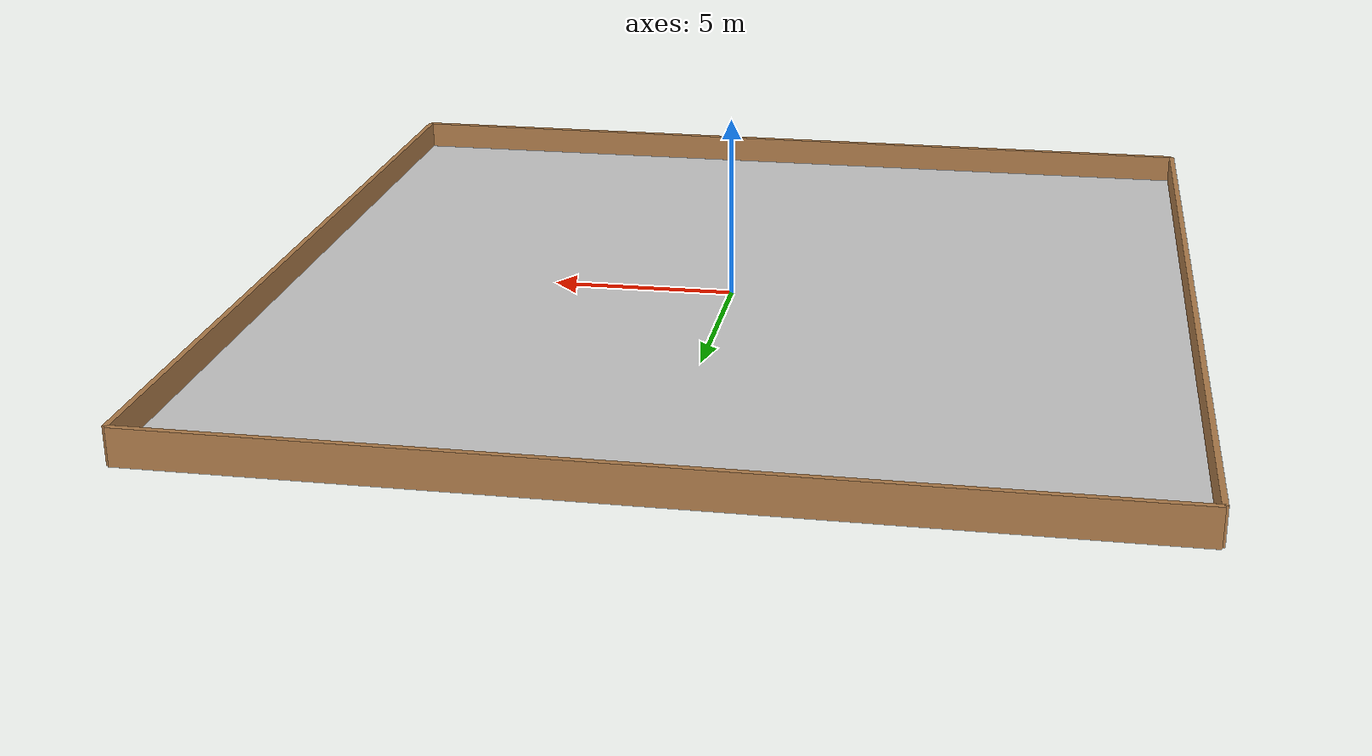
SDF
<sdf version='1.6'>
  <world name='default'>
    <include>
      <uri>model://sun</uri>
    </include>
    <include>
      <uri>model://grounds</uri>
    </include>
    <include>
      <uri>model://enclosure</uri>
    </include>
    <physics type="ode">
        <real_time_update_rate>200</real_time_update_rate>
        <real_time_factor>1</real_time_factor>
        <max_step_size>0.005</max_step_size>
    </physics>
    <gravity>0 0 -9.8</gravity>
  </world>
</sdf>

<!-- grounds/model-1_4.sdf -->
<sdf version="1.4">
<model name="grounds">
  <static>true</static>
    <link name="dirt">
      <collision name="collision">
        <geometry>
          <plane>
            <normal>0 0 1</normal>
            <size>25 25</size>
          </plane>
        </geometry>
        <surface>
          <friction>
            <ode>
              <mu>Inf</mu>
              <mu2>Inf</mu2>
            </ode>
          </friction>
        </surface>
      </collision>
      <visual name="visual">
        <cast_shadows>false</cast_shadows>
        <geometry>
          <plane>
            <normal>0 0 1</normal>
            <size>25 25</size>
          </plane>
        </geometry>
        <material>
          <script>
            <uri>model://grounds/materials/scripts</uri>
            <uri>model://grounds/materials/textures</uri>
            <name>grounds/terrain</name>
          </script>
        </material>
      </visual>
    </link>
  </model>
</sdf>

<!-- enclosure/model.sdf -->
<sdf version='1.6'>
  <model name='enclosure'>
    <link name='Wall_0'>
      <pose frame=''>0 12.5 0 0 -0 0</pose>
      <self_collide>0</self_collide>
      <enable_wind>0</enable_wind>
      <kinematic>0</kinematic>
      <gravity>1</gravity>
      <inertial>
        <mass>1</mass>
        <pose frame=''>0 0 0 0 -0 0</pose>
        <inertia>
          <ixx>1</ixx>
          <ixy>0</ixy>
          <ixz>0</ixz>
          <iyy>1</iyy>
          <iyz>0</iyz>
          <izz>1</izz>
        </inertia>
      </inertial>
      <visual name='Wall_0_Visual'>
        <pose frame=''>0 0 0.25 0 -0 0</pose>
        <geometry>
          <box>
            <size>25.0 0.15 1.0</size>
          </box>
        </geometry>
        <material>
          <script>
            <uri>file://media/materials/scripts/gazebo.material</uri>
            <name>Gazebo/Wood</name>
          </script>
          <ambient>1 1 1 1</ambient>
          <shader type='pixel'>
            <normal_map>__default__</normal_map>
          </shader>
          <diffuse>1 1 1 1</diffuse>
          <specular>0.2 0.2 0.2 1</specular>
          <emissive>0 0 0 1</emissive>
        </material>
        <meta>
          <layer>0</layer>
        </meta>
        <transparency>0</transparency>
        <cast_shadows>1</cast_shadows>
      </visual>
      <collision name='Wall_0_Collision'>
        <laser_retro>0</laser_retro>
        <max_contacts>10</max_contacts>
        <pose frame=''>0 0 0.25 0 -0 0</pose>
        <geometry>
          <box>
            <size>25.0 0.15 1.0</size>
          </box>
        </geometry>
        <surface>
          <friction>
            <ode>
              <mu>1</mu>
              <mu2>1</mu2>
              <fdir1>0 0 0</fdir1>
              <slip1>0</slip1>
              <slip2>0</slip2>
            </ode>
            <torsional>
              <coefficient>1</coefficient>
              <patch_radius>0</patch_radius>
              <surface_radius>0</surface_radius>
              <use_patch_radius>1</use_patch_radius>
              <ode>
                <slip>0</slip>
              </ode>
            </torsional>
          </friction>
          <bounce>
            <restitution_coefficient>0</restitution_coefficient>
            <threshold>1e+06</threshold>
          </bounce>
          <contact>
            <collide_without_contact>0</collide_without_contact>
            <collide_without_contact_bitmask>1</collide_without_contact_bitmask>
            <collide_bitmask>1</collide_bitmask>
            <ode>
              <soft_cfm>0</soft_cfm>
              <soft_erp>0.2</soft_erp>
              <kp>1e+13</kp>
              <kd>1</kd>
              <max_vel>0.01</max_vel>
              <min_depth>0</min_depth>
            </ode>
            <bullet>
              <split_impulse>1</split_impulse>
              <split_impulse_penetration_threshold>-0.01</split_impulse_penetration_threshold>
              <soft_cfm>0</soft_cfm>
              <soft_erp>0.2</soft_erp>
              <kp>1e+13</kp>
              <kd>1</kd>
            </bullet>
          </contact>
        </surface>
      </collision>
    </link>
    <link name='Wall_1'>
      <pose frame=''>0 -12.5 0 0 -0 0</pose>
      <self_collide>0</self_collide>
      <enable_wind>0</enable_wind>
      <kinematic>0</kinematic>
      <gravity>1</gravity>
      <inertial>
        <mass>1</mass>
        <pose frame=''>0 0 0 0 -0 0</pose>
        <inertia>
          <ixx>1</ixx>
          <ixy>0</ixy>
          <ixz>0</ixz>
          <iyy>1</iyy>
          <iyz>0</iyz>
          <izz>1</izz>
        </inertia>
      </inertial>
      <visual name='Wall_1_Visual'>
        <pose frame=''>0 0 0.25 0 -0 0</pose>
        <geometry>
          <box>
            <size>25.0 0.15 1.0</size>
          </box>
        </geometry>
        <material>
          <script>
            <uri>file://media/materials/scripts/gazebo.material</uri>
            <name>Gazebo/Wood</name>
          </script>
          <ambient>1 1 1 1</ambient>
          <shader type='pixel'>
            <normal_map>__default__</normal_map>
          </shader>
          <diffuse>1 1 1 1</diffuse>
          <specular>0.2 0.2 0.2 1</specular>
          <emissive>0 0 0 1</emissive>
        </material>
        <meta>
          <layer>0</layer>
        </meta>
        <transparency>0</transparency>
        <cast_shadows>1</cast_shadows>
      </visual>
      <collision name='Wall_1_Collision'>
        <laser_retro>0</laser_retro>
        <max_contacts>10</max_contacts>
        <pose frame=''>0 0 0.25 0 -0 0</pose>
        <geometry>
          <box>
            <size>25.0 0.15 1.0</size>
          </box>
        </geometry>
        <surface>
          <friction>
            <ode>
              <mu>1</mu>
              <mu2>1</mu2>
              <fdir1>0 0 0</fdir1>
              <slip1>0</slip1>
              <slip2>0</slip2>
            </ode>
            <torsional>
              <coefficient>1</coefficient>
              <patch_radius>0</patch_radius>
              <surface_radius>0</surface_radius>
              <use_patch_radius>1</use_patch_radius>
              <ode>
                <slip>0</slip>
              </ode>
            </torsional>
          </friction>
          <bounce>
            <restitution_coefficient>0</restitution_coefficient>
            <threshold>1e+06</threshold>
          </bounce>
          <contact>
            <collide_without_contact>0</collide_without_contact>
            <collide_without_contact_bitmask>1</collide_without_contact_bitmask>
            <collide_bitmask>1</collide_bitmask>
            <ode>
              <soft_cfm>0</soft_cfm>
              <soft_erp>0.2</soft_erp>
              <kp>1e+13</kp>
              <kd>1</kd>
              <max_vel>0.01</max_vel>
              <min_depth>0</min_depth>
            </ode>
            <bullet>
              <split_impulse>1</split_impulse>
              <split_impulse_penetration_threshold>-0.01</split_impulse_penetration_threshold>
              <soft_cfm>0</soft_cfm>
              <soft_erp>0.2</soft_erp>
              <kp>1e+13</kp>
              <kd>1</kd>
            </bullet>
          </contact>
        </surface>
      </collision>
    </link>
    <link name='Wall_2'>
      <pose frame=''>-12.5 0 0 0 -0 1.57</pose>
      <self_collide>0</self_collide>
      <enable_wind>0</enable_wind>
      <kinematic>0</kinematic>
      <gravity>1</gravity>
      <inertial>
        <mass>1</mass>
        <pose frame=''>0 0 0 0 -0 0</pose>
        <inertia>
          <ixx>1</ixx>
          <ixy>0</ixy>
          <ixz>0</ixz>
          <iyy>1</iyy>
          <iyz>0</iyz>
          <izz>1</izz>
        </inertia>
      </inertial>
      <visual name='Wall_2_Visual'>
        <pose frame=''>0 0 0.25 0 -0 0</pose>
        <geometry>
          <box>
            <size>25.0 0.15 1.0</size>
          </box>
        </geometry>
        <material>
          <script>
            <uri>file://media/materials/scripts/gazebo.material</uri>
            <name>Gazebo/Wood</name>
          </script>
          <ambient>1 1 1 1</ambient>
          <shader type='pixel'>
            <normal_map>__default__</normal_map>
          </shader>
          <diffuse>1 1 1 1</diffuse>
          <specular>0.2 0.2 0.2 1</specular>
          <emissive>0 0 0 1</emissive>
        </material>
        <meta>
          <layer>0</layer>
        </meta>
        <transparency>0</transparency>
        <cast_shadows>1</cast_shadows>
      </visual>
      <collision name='Wall_2_Collision'>
        <laser_retro>0</laser_retro>
        <max_contacts>10</max_contacts>
        <pose frame=''>0 0 0.25 0 -0 0</pose>
        <geometry>
          <box>
            <size>25.0 0.15 1.0</size>
          </box>
        </geometry>
        <surface>
          <friction>
            <ode>
              <mu>1</mu>
              <mu2>1</mu2>
              <fdir1>0 0 0</fdir1>
              <slip1>0</slip1>
              <slip2>0</slip2>
            </ode>
            <torsional>
              <coefficient>1</coefficient>
              <patch_radius>0</patch_radius>
              <surface_radius>0</surface_radius>
              <use_patch_radius>1</use_patch_radius>
              <ode>
                <slip>0</slip>
              </ode>
            </torsional>
          </friction>
          <bounce>
            <restitution_coefficient>0</restitution_coefficient>
            <threshold>1e+06</threshold>
          </bounce>
          <contact>
            <collide_without_contact>0</collide_without_contact>
            <collide_without_contact_bitmask>1</collide_without_contact_bitmask>
            <collide_bitmask>1</collide_bitmask>
            <ode>
              <soft_cfm>0</soft_cfm>
              <soft_erp>0.2</soft_erp>
              <kp>1e+13</kp>
              <kd>1</kd>
              <max_vel>0.01</max_vel>
              <min_depth>0</min_depth>
            </ode>
            <bullet>
              <split_impulse>1</split_impulse>
              <split_impulse_penetration_threshold>-0.01</split_impulse_penetration_threshold>
              <soft_cfm>0</soft_cfm>
              <soft_erp>0.2</soft_erp>
              <kp>1e+13</kp>
              <kd>1</kd>
            </bullet>
          </contact>
        </surface>
      </collision>
    </link>
    <link name='Wall_3'>
      <pose frame=''>12.5 0 0 0 -0 1.57</pose>
      <self_collide>0</self_collide>
      <enable_wind>0</enable_wind>
      <kinematic>0</kinematic>
      <gravity>1</gravity>
      <inertial>
        <mass>1</mass>
        <pose frame=''>0 0 0 0 -0 0</pose>
        <inertia>
          <ixx>1</ixx>
          <ixy>0</ixy>
          <ixz>0</ixz>
          <iyy>1</iyy>
          <iyz>0</iyz>
          <izz>1</izz>
        </inertia>
      </inertial>
      <visual name='Wall_3_Visual'>
        <pose frame=''>0 0 0.25 0 -0 0</pose>
        <geometry>
          <box>
            <size>25.0 0.15 1.0</size>
          </box>
        </geometry>
        <material>
          <script>
            <uri>file://media/materials/scripts/gazebo.material</uri>
            <name>Gazebo/Wood</name>
          </script>
          <ambient>1 1 1 1</ambient>
          <shader type='pixel'>
            <normal_map>__default__</normal_map>
          </shader>
          <diffuse>1 1 1 1</diffuse>
          <specular>0.2 0.2 0.2 1</specular>
          <emissive>0 0 0 1</emissive>
        </material>
        <meta>
          <layer>0</layer>
        </meta>
        <transparency>0</transparency>
        <cast_shadows>1</cast_shadows>
      </visual>
      <collision name='Wall_3_Collision'>
        <laser_retro>0</laser_retro>
        <max_contacts>10</max_contacts>
        <pose frame=''>0 0 0.25 0 -0 0</pose>
        <geometry>
          <box>
            <size>25.0 0.15 1.0</size>
          </box>
        </geometry>
        <surface>
          <friction>
            <ode>
              <mu>1</mu>
              <mu2>1</mu2>
              <fdir1>0 0 0</fdir1>
              <slip1>0</slip1>
              <slip2>0</slip2>
            </ode>
            <torsional>
              <coefficient>1</coefficient>
              <patch_radius>0</patch_radius>
              <surface_radius>0</surface_radius>
              <use_patch_radius>1</use_patch_radius>
              <ode>
                <slip>0</slip>
              </ode>
            </torsional>
          </friction>
          <bounce>
            <restitution_coefficient>0</restitution_coefficient>
            <threshold>1e+06</threshold>
          </bounce>
          <contact>
            <collide_without_contact>0</collide_without_contact>
            <collide_without_contact_bitmask>1</collide_without_contact_bitmask>
            <collide_bitmask>1</collide_bitmask>
            <ode>
              <soft_cfm>0</soft_cfm>
              <soft_erp>0.2</soft_erp>
              <kp>1e+13</kp>
              <kd>1</kd>
              <max_vel>0.01</max_vel>
              <min_depth>0</min_depth>
            </ode>
            <bullet>
              <split_impulse>1</split_impulse>
              <split_impulse_penetration_threshold>-0.01</split_impulse_penetration_threshold>
              <soft_cfm>0</soft_cfm>
              <soft_erp>0.2</soft_erp>
              <kp>1e+13</kp>
              <kd>1</kd>
            </bullet>
          </contact>
        </surface>
      </collision>
    </link>
    <static>1</static>
    <allow_auto_disable>1</allow_auto_disable>
  </model>
</sdf>
